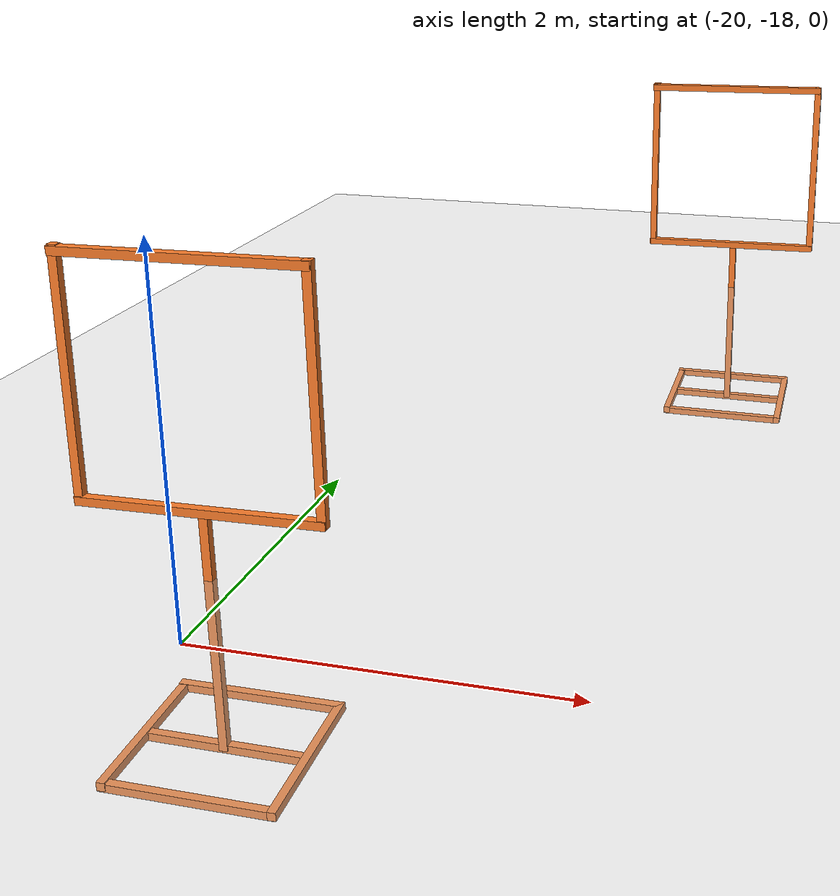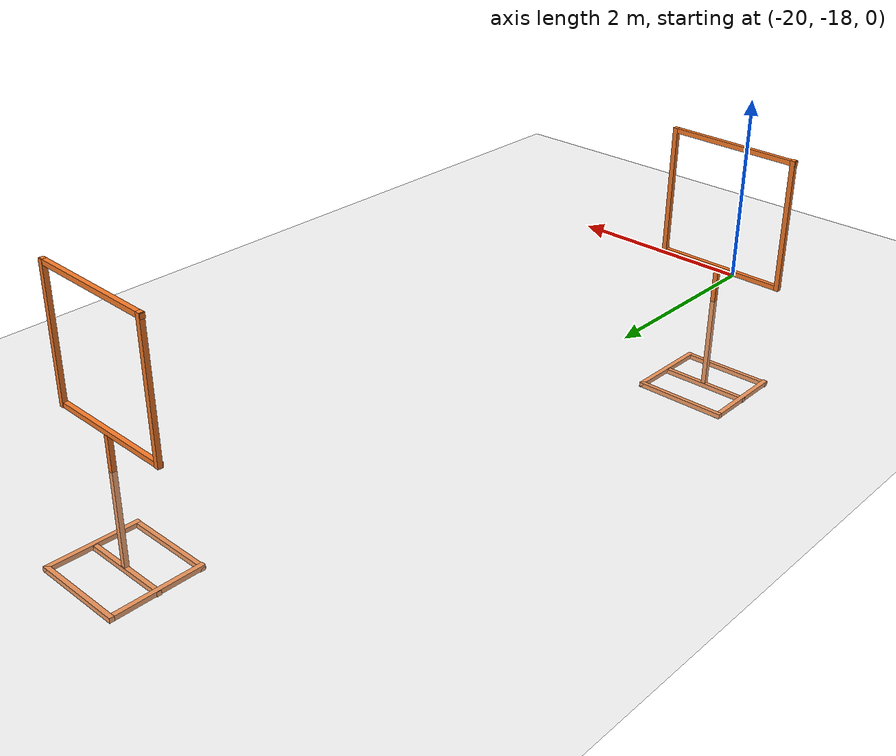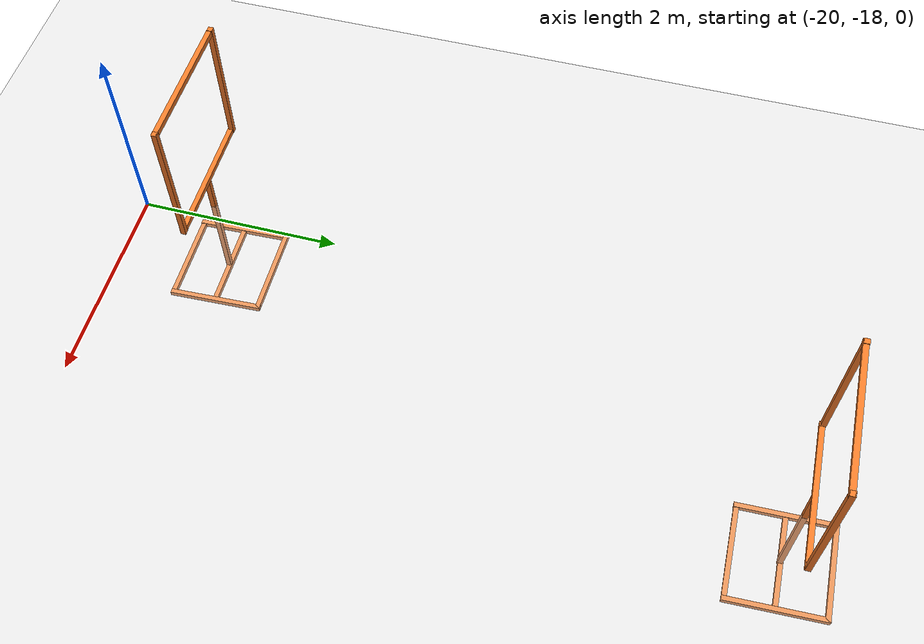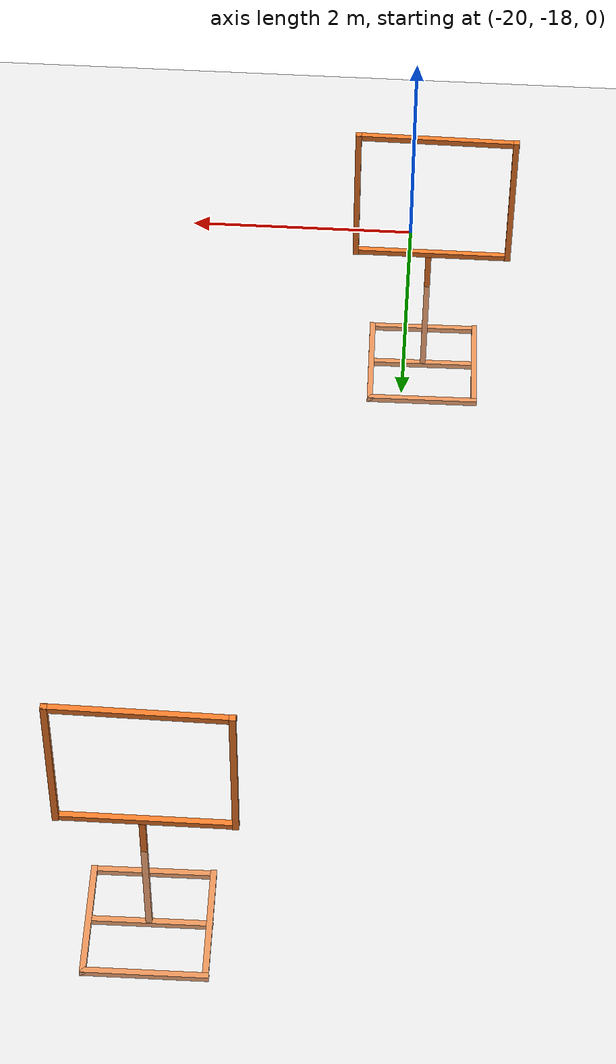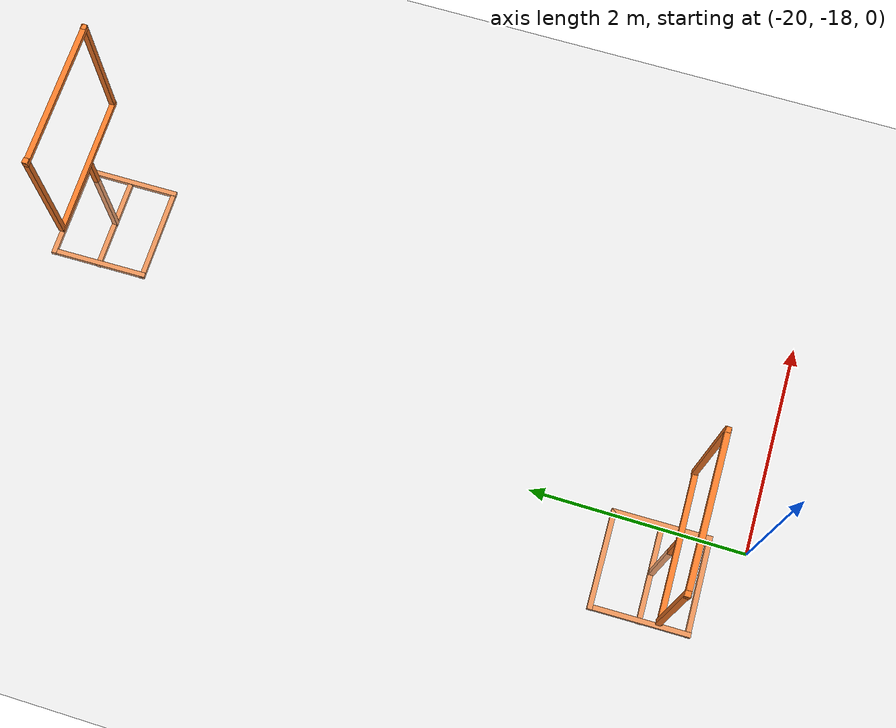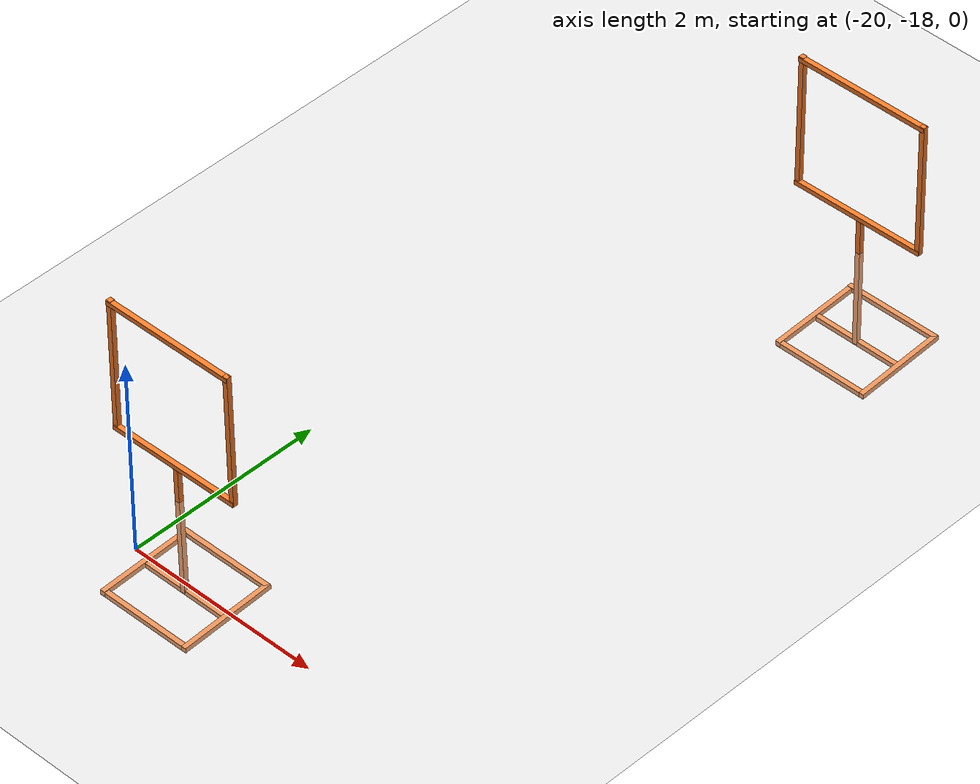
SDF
<sdf version="1.6">
 <world name="default">
  <model name="ground_plane">
   <static>1</static>
   <link name="link">
    <collision name="collision">
     <geometry><plane><normal>0 0 1</normal><size>100 100</size></plane></geometry>
     <surface><friction><ode><mu>100</mu><mu2>50</mu2></ode></friction></surface>
    </collision>
    <visual name="visual">
     <cast_shadows>0</cast_shadows>
     <geometry><plane><normal>0 0 1</normal><size>100 100</size></plane></geometry>
     <material>
      <script><uri>file://media/materials/scripts/gazebo.material</uri><name>Gazebo/Grey</name></script>
     </material>
    </visual>
    <velocity_decay><linear>0</linear><angular>0</angular></velocity_decay>
   </link>
  </model>
  <model name="closed_gate_clone_clone_0_clone_2">
   <link name="link">
    <inertial>
     <mass>1</mass>
     <inertia>
      <ixx>0.166667</ixx>
      <ixy>0</ixy>
      <ixz>0</ixz>
      <iyy>0.166667</iyy>
      <iyz>0</iyz>
      <izz>0.166667</izz>
     </inertia>
    </inertial>
    <pose>0.404756 -0.715724 1.41623 0 -0 0</pose>
    <visual name="visual">
     <geometry><box><size>0.05 0.05 1.4</size></box></geometry>
     <material>
      <script><name>Gazebo/Grey</name><uri>file://media/materials/scripts/gazebo.material</uri></script>
      <shader type="vertex"><normal_map>__default__</normal_map></shader>
      <ambient>0.976 0.484 0.164 1</ambient>
      <diffuse>0.976 0.484 0.164 1</diffuse>
      <specular>0.01 0.01 0.01 1</specular>
      <emissive>0 0 0 1</emissive>
     </material>
    </visual>
    <collision name="collision">
     <geometry><box><size>0.05 0.05 1.4</size></box></geometry>
     <surface>
      <friction>
       <ode><mu>1</mu><mu2>1</mu2><fdir1>0 0 0</fdir1><slip1>0</slip1><slip2>0</slip2></ode>
       <torsional>
        <coefficient>1</coefficient>
        <patch_radius>0</patch_radius>
        <surface_radius>0</surface_radius>
        <use_patch_radius>1</use_patch_radius>
        <ode><slip>0</slip></ode>
       </torsional>
      </friction>
      <bounce><restitution_coefficient>0</restitution_coefficient><threshold>1e+06</threshold></bounce>
      <contact>
       <collide_without_contact>0</collide_without_contact>
       <collide_without_contact_bitmask>1</collide_without_contact_bitmask>
       <collide_bitmask>1</collide_bitmask>
       <ode>
        <soft_cfm>0</soft_cfm>
        <soft_erp>0.2</soft_erp>
        <kp>1e+13</kp>
        <kd>1</kd>
        <max_vel>0.01</max_vel>
        <min_depth>0</min_depth>
       </ode>
       <bullet>
        <split_impulse>1</split_impulse>
        <split_impulse_penetration_threshold>-0.01</split_impulse_penetration_threshold>
        <soft_cfm>0</soft_cfm>
        <soft_erp>0.2</soft_erp>
        <kp>1e+13</kp>
        <kd>1</kd>
       </bullet>
      </contact>
     </surface>
    </collision>
   </link>
   <link name="link_clone_0_clone_0">
    <inertial>
     <mass>1</mass>
     <inertia>
      <ixx>0.166667</ixx>
      <ixy>0</ixy>
      <ixz>0</ixz>
      <iyy>0.166667</iyy>
      <iyz>0</iyz>
      <izz>0.166667</izz>
     </inertia>
    </inertial>
    <pose>1.11096 -0.693594 -0.667388 -1.57955 0.044957 -1.56415</pose>
    <visual name="visual">
     <geometry><box><size>0.05 0.05 1</size></box></geometry>
     <material>
      <script><name>Gazebo/Grey</name><uri>file://media/materials/scripts/gazebo.material</uri></script>
      <shader type="vertex"><normal_map>__default__</normal_map></shader>
      <ambient>0.976 0.484 0.164 1</ambient>
      <diffuse>0.976 0.484 0.164 1</diffuse>
      <specular>0.01 0.01 0.01 1</specular>
      <emissive>0 0 0 1</emissive>
     </material>
    </visual>
    <collision name="collision">
     <geometry><box><size>0.05 0.05 1</size></box></geometry>
     <surface>
      <friction>
       <ode><mu>1</mu><mu2>1</mu2><fdir1>0 0 0</fdir1><slip1>0</slip1><slip2>0</slip2></ode>
       <torsional>
        <coefficient>1</coefficient>
        <patch_radius>0</patch_radius>
        <surface_radius>0</surface_radius>
        <use_patch_radius>1</use_patch_radius>
        <ode><slip>0</slip></ode>
       </torsional>
      </friction>
      <bounce><restitution_coefficient>0</restitution_coefficient><threshold>1e+06</threshold></bounce>
      <contact>
       <collide_without_contact>0</collide_without_contact>
       <collide_without_contact_bitmask>1</collide_without_contact_bitmask>
       <collide_bitmask>1</collide_bitmask>
       <ode>
        <soft_cfm>0</soft_cfm>
        <soft_erp>0.2</soft_erp>
        <kp>1e+13</kp>
        <kd>1</kd>
        <max_vel>0.01</max_vel>
        <min_depth>0</min_depth>
       </ode>
       <bullet>
        <split_impulse>1</split_impulse>
        <split_impulse_penetration_threshold>-0.01</split_impulse_penetration_threshold>
        <soft_cfm>0</soft_cfm>
        <soft_erp>0.2</soft_erp>
        <kp>1e+13</kp>
        <kd>1</kd>
       </bullet>
      </contact>
     </surface>
    </collision>
   </link>
   <link name="link_clone_0_clone_0_clone">
    <inertial>
     <mass>1</mass>
     <inertia>
      <ixx>0.166667</ixx>
      <ixy>0</ixy>
      <ixz>0</ixz>
      <iyy>0.166667</iyy>
      <iyz>0</iyz>
      <izz>0.166667</izz>
     </inertia>
    </inertial>
    <pose>0.637485 -0.695511 -0.656732 -1.55146 -0.019345 0.017432</pose>
    <visual name="visual">
     <geometry><box><size>0.05 0.05 1</size></box></geometry>
     <material>
      <script><name>Gazebo/Grey</name><uri>file://media/materials/scripts/gazebo.material</uri></script>
      <shader type="vertex"><normal_map>__default__</normal_map></shader>
      <ambient>0.976 0.484 0.164 1</ambient>
      <diffuse>0.976 0.484 0.164 1</diffuse>
      <specular>0.01 0.01 0.01 1</specular>
      <emissive>0 0 0 1</emissive>
     </material>
    </visual>
    <collision name="collision">
     <geometry><box><size>0.05 0.05 1</size></box></geometry>
     <surface>
      <friction>
       <ode><mu>1</mu><mu2>1</mu2><fdir1>0 0 0</fdir1><slip1>0</slip1><slip2>0</slip2></ode>
       <torsional>
        <coefficient>1</coefficient>
        <patch_radius>0</patch_radius>
        <surface_radius>0</surface_radius>
        <use_patch_radius>1</use_patch_radius>
        <ode><slip>0</slip></ode>
       </torsional>
      </friction>
      <bounce><restitution_coefficient>0</restitution_coefficient><threshold>1e+06</threshold></bounce>
      <contact>
       <collide_without_contact>0</collide_without_contact>
       <collide_without_contact_bitmask>1</collide_without_contact_bitmask>
       <collide_bitmask>1</collide_bitmask>
       <ode>
        <soft_cfm>0</soft_cfm>
        <soft_erp>0.2</soft_erp>
        <kp>1e+13</kp>
        <kd>1</kd>
        <max_vel>0.01</max_vel>
        <min_depth>0</min_depth>
       </ode>
       <bullet>
        <split_impulse>1</split_impulse>
        <split_impulse_penetration_threshold>-0.01</split_impulse_penetration_threshold>
        <soft_cfm>0</soft_cfm>
        <soft_erp>0.2</soft_erp>
        <kp>1e+13</kp>
        <kd>1</kd>
       </bullet>
      </contact>
     </surface>
    </collision>
   </link>
   <link name="link_clone_0_clone_0_clone_0">
    <inertial>
     <mass>1</mass>
     <inertia>
      <ixx>0.166667</ixx>
      <ixy>0</ixy>
      <ixz>0</ixz>
      <iyy>0.166667</iyy>
      <iyz>0</iyz>
      <izz>0.166667</izz>
     </inertia>
    </inertial>
    <pose>1.12077 -1.16283 -0.677317 -1.57839 0.053451 -1.56287</pose>
    <visual name="visual">
     <geometry><box><size>0.05 0.05 1</size></box></geometry>
     <material>
      <script><name>Gazebo/Grey</name><uri>file://media/materials/scripts/gazebo.material</uri></script>
      <shader type="vertex"><normal_map>__default__</normal_map></shader>
      <ambient>0.976 0.484 0.164 1</ambient>
      <diffuse>0.976 0.484 0.164 1</diffuse>
      <specular>0.01 0.01 0.01 1</specular>
      <emissive>0 0 0 1</emissive>
     </material>
    </visual>
    <collision name="collision">
     <geometry><box><size>0.05 0.05 1</size></box></geometry>
     <surface>
      <friction>
       <ode><mu>1</mu><mu2>1</mu2><fdir1>0 0 0</fdir1><slip1>0</slip1><slip2>0</slip2></ode>
       <torsional>
        <coefficient>1</coefficient>
        <patch_radius>0</patch_radius>
        <surface_radius>0</surface_radius>
        <use_patch_radius>1</use_patch_radius>
        <ode><slip>0</slip></ode>
       </torsional>
      </friction>
      <bounce><restitution_coefficient>0</restitution_coefficient><threshold>1e+06</threshold></bounce>
      <contact>
       <collide_without_contact>0</collide_without_contact>
       <collide_without_contact_bitmask>1</collide_without_contact_bitmask>
       <collide_bitmask>1</collide_bitmask>
       <ode>
        <soft_cfm>0</soft_cfm>
        <soft_erp>0.2</soft_erp>
        <kp>1e+13</kp>
        <kd>1</kd>
        <max_vel>0.01</max_vel>
        <min_depth>0</min_depth>
       </ode>
       <bullet>
        <split_impulse>1</split_impulse>
        <split_impulse_penetration_threshold>-0.01</split_impulse_penetration_threshold>
        <soft_cfm>0</soft_cfm>
        <soft_erp>0.2</soft_erp>
        <kp>1e+13</kp>
        <kd>1</kd>
       </bullet>
      </contact>
     </surface>
    </collision>
   </link>
   <link name="link_clone_0_clone_0_clone_2">
    <inertial>
     <mass>1</mass>
     <inertia>
      <ixx>0.166667</ixx>
      <ixy>0</ixy>
      <ixz>0</ixz>
      <iyy>0.166667</iyy>
      <iyz>0</iyz>
      <izz>0.166667</izz>
     </inertia>
    </inertial>
    <pose>1.10088 -0.214462 -0.645898 -1.57451 0.053447 -1.56287</pose>
    <visual name="visual">
     <geometry><box><size>0.05 0.05 1</size></box></geometry>
     <material>
      <script><name>Gazebo/Grey</name><uri>file://media/materials/scripts/gazebo.material</uri></script>
      <shader type="vertex"><normal_map>__default__</normal_map></shader>
      <ambient>0.976 0.484 0.164 1</ambient>
      <diffuse>0.976 0.484 0.164 1</diffuse>
      <specular>0.01 0.01 0.01 1</specular>
      <emissive>0 0 0 1</emissive>
     </material>
    </visual>
    <collision name="collision">
     <geometry><box><size>0.05 0.05 1</size></box></geometry>
     <surface>
      <friction>
       <ode><mu>1</mu><mu2>1</mu2><fdir1>0 0 0</fdir1><slip1>0</slip1><slip2>0</slip2></ode>
       <torsional>
        <coefficient>1</coefficient>
        <patch_radius>0</patch_radius>
        <surface_radius>0</surface_radius>
        <use_patch_radius>1</use_patch_radius>
        <ode><slip>0</slip></ode>
       </torsional>
      </friction>
      <bounce><restitution_coefficient>0</restitution_coefficient><threshold>1e+06</threshold></bounce>
      <contact>
       <collide_without_contact>0</collide_without_contact>
       <collide_without_contact_bitmask>1</collide_without_contact_bitmask>
       <collide_bitmask>1</collide_bitmask>
       <ode>
        <soft_cfm>0</soft_cfm>
        <soft_erp>0.2</soft_erp>
        <kp>1e+13</kp>
        <kd>1</kd>
        <max_vel>0.01</max_vel>
        <min_depth>0</min_depth>
       </ode>
       <bullet>
        <split_impulse>1</split_impulse>
        <split_impulse_penetration_threshold>-0.01</split_impulse_penetration_threshold>
        <soft_cfm>0</soft_cfm>
        <soft_erp>0.2</soft_erp>
        <kp>1e+13</kp>
        <kd>1</kd>
       </bullet>
      </contact>
     </surface>
    </collision>
   </link>
   <link name="link_clone_0_clone_0_clone_clone">
    <inertial>
     <mass>1</mass>
     <inertia>
      <ixx>0.166667</ixx>
      <ixy>0</ixy>
      <ixz>0</ixz>
      <iyy>0.166667</iyy>
      <iyz>0</iyz>
      <izz>0.166667</izz>
     </inertia>
    </inertial>
    <pose>1.59453 -0.684923 -0.663241 -1.53838 -0.023075 0.018345</pose>
    <visual name="visual">
     <geometry><box><size>0.05 0.05 1</size></box></geometry>
     <material>
      <script><name>Gazebo/Grey</name><uri>file://media/materials/scripts/gazebo.material</uri></script>
      <shader type="vertex"><normal_map>__default__</normal_map></shader>
      <ambient>0.976 0.484 0.164 1</ambient>
      <diffuse>0.976 0.484 0.164 1</diffuse>
      <specular>0.01 0.01 0.01 1</specular>
      <emissive>0 0 0 1</emissive>
     </material>
    </visual>
    <collision name="collision">
     <geometry><box><size>0.05 0.05 1</size></box></geometry>
     <surface>
      <friction>
       <ode><mu>1</mu><mu2>1</mu2><fdir1>0 0 0</fdir1><slip1>0</slip1><slip2>0</slip2></ode>
       <torsional>
        <coefficient>1</coefficient>
        <patch_radius>0</patch_radius>
        <surface_radius>0</surface_radius>
        <use_patch_radius>1</use_patch_radius>
        <ode><slip>0</slip></ode>
       </torsional>
      </friction>
      <bounce><restitution_coefficient>0</restitution_coefficient><threshold>1e+06</threshold></bounce>
      <contact>
       <collide_without_contact>0</collide_without_contact>
       <collide_without_contact_bitmask>1</collide_without_contact_bitmask>
       <collide_bitmask>1</collide_bitmask>
       <ode>
        <soft_cfm>0</soft_cfm>
        <soft_erp>0.2</soft_erp>
        <kp>1e+13</kp>
        <kd>1</kd>
        <max_vel>0.01</max_vel>
        <min_depth>0</min_depth>
       </ode>
       <bullet>
        <split_impulse>1</split_impulse>
        <split_impulse_penetration_threshold>-0.01</split_impulse_penetration_threshold>
        <soft_cfm>0</soft_cfm>
        <soft_erp>0.2</soft_erp>
        <kp>1e+13</kp>
        <kd>1</kd>
       </bullet>
      </contact>
     </surface>
    </collision>
   </link>
   <link name="link_clone_0_clone_1">
    <inertial>
     <mass>1</mass>
     <inertia>
      <ixx>0.166667</ixx>
      <ixy>0</ixy>
      <ixz>0</ixz>
      <iyy>0.166667</iyy>
      <iyz>0</iyz>
      <izz>0.166667</izz>
     </inertia>
    </inertial>
    <pose>1.08198 -0.717602 0.744079 -1.56201 0.04483 -1.56244</pose>
    <visual name="visual">
     <geometry><box><size>0.05 0.05 1.4</size></box></geometry>
     <material>
      <script><name>Gazebo/Grey</name><uri>file://media/materials/scripts/gazebo.material</uri></script>
      <shader type="vertex"><normal_map>__default__</normal_map></shader>
      <ambient>0.976 0.484 0.164 1</ambient>
      <diffuse>0.976 0.484 0.164 1</diffuse>
      <specular>0.01 0.01 0.01 1</specular>
      <emissive>0 0 0 1</emissive>
     </material>
    </visual>
    <collision name="collision">
     <geometry><box><size>0.05 0.05 1.4</size></box></geometry>
     <surface>
      <friction>
       <ode><mu>1</mu><mu2>1</mu2><fdir1>0 0 0</fdir1><slip1>0</slip1><slip2>0</slip2></ode>
       <torsional>
        <coefficient>1</coefficient>
        <patch_radius>0</patch_radius>
        <surface_radius>0</surface_radius>
        <use_patch_radius>1</use_patch_radius>
        <ode><slip>0</slip></ode>
       </torsional>
      </friction>
      <bounce><restitution_coefficient>0</restitution_coefficient><threshold>1e+06</threshold></bounce>
      <contact>
       <collide_without_contact>0</collide_without_contact>
       <collide_without_contact_bitmask>1</collide_without_contact_bitmask>
       <collide_bitmask>1</collide_bitmask>
       <ode>
        <soft_cfm>0</soft_cfm>
        <soft_erp>0.2</soft_erp>
        <kp>1e+13</kp>
        <kd>1</kd>
        <max_vel>0.01</max_vel>
        <min_depth>0</min_depth>
       </ode>
       <bullet>
        <split_impulse>1</split_impulse>
        <split_impulse_penetration_threshold>-0.01</split_impulse_penetration_threshold>
        <soft_cfm>0</soft_cfm>
        <soft_erp>0.2</soft_erp>
        <kp>1e+13</kp>
        <kd>1</kd>
       </bullet>
      </contact>
     </surface>
    </collision>
   </link>
   <link name="link_clone_0_clone_1_clone">
    <inertial>
     <mass>1</mass>
     <inertia>
      <ixx>0.166667</ixx>
      <ixy>0</ixy>
      <ixz>0</ixz>
      <iyy>0.166667</iyy>
      <iyz>0</iyz>
      <izz>0.166667</izz>
     </inertia>
    </inertial>
    <pose>1.07529 -0.719849 2.09328 -1.55888 0.053444 -1.57124</pose>
    <visual name="visual">
     <geometry><box><size>0.05 0.05 1.4</size></box></geometry>
     <material>
      <script><name>Gazebo/Grey</name><uri>file://media/materials/scripts/gazebo.material</uri></script>
      <shader type="vertex"><normal_map>__default__</normal_map></shader>
      <ambient>0.976 0.484 0.164 1</ambient>
      <diffuse>0.976 0.484 0.164 1</diffuse>
      <specular>0.01 0.01 0.01 1</specular>
      <emissive>0 0 0 1</emissive>
     </material>
    </visual>
    <collision name="collision">
     <geometry><box><size>0.05 0.05 1.4</size></box></geometry>
     <surface>
      <friction>
       <ode><mu>1</mu><mu2>1</mu2><fdir1>0 0 0</fdir1><slip1>0</slip1><slip2>0</slip2></ode>
       <torsional>
        <coefficient>1</coefficient>
        <patch_radius>0</patch_radius>
        <surface_radius>0</surface_radius>
        <use_patch_radius>1</use_patch_radius>
        <ode><slip>0</slip></ode>
       </torsional>
      </friction>
      <bounce><restitution_coefficient>0</restitution_coefficient><threshold>1e+06</threshold></bounce>
      <contact>
       <collide_without_contact>0</collide_without_contact>
       <collide_without_contact_bitmask>1</collide_without_contact_bitmask>
       <collide_bitmask>1</collide_bitmask>
       <ode>
        <soft_cfm>0</soft_cfm>
        <soft_erp>0.2</soft_erp>
        <kp>1e+13</kp>
        <kd>1</kd>
        <max_vel>0.01</max_vel>
        <min_depth>0</min_depth>
       </ode>
       <bullet>
        <split_impulse>1</split_impulse>
        <split_impulse_penetration_threshold>-0.01</split_impulse_penetration_threshold>
        <soft_cfm>0</soft_cfm>
        <soft_erp>0.2</soft_erp>
        <kp>1e+13</kp>
        <kd>1</kd>
       </bullet>
      </contact>
     </surface>
    </collision>
   </link>
   <link name="link_clone_1">
    <inertial>
     <mass>1</mass>
     <inertia>
      <ixx>0.166667</ixx>
      <ixy>0</ixy>
      <ixz>0</ixz>
      <iyy>0.166667</iyy>
      <iyz>0</iyz>
      <izz>0.166667</izz>
     </inertia>
    </inertial>
    <pose>1.11167 -0.706269 0.02254 0.008527 -0.003582 0.001077</pose>
    <visual name="visual">
     <geometry><box><size>0.05 0.05 1.4</size></box></geometry>
     <material>
      <script><name>Gazebo/Grey</name><uri>file://media/materials/scripts/gazebo.material</uri></script>
      <shader type="vertex"><normal_map>__default__</normal_map></shader>
      <ambient>0.976 0.484 0.164 1</ambient>
      <diffuse>0.976 0.484 0.164 1</diffuse>
      <specular>0.01 0.01 0.01 1</specular>
      <emissive>0 0 0 1</emissive>
     </material>
    </visual>
    <collision name="collision">
     <geometry><box><size>0.05 0.05 1.4</size></box></geometry>
     <surface>
      <friction>
       <ode><mu>1</mu><mu2>1</mu2><fdir1>0 0 0</fdir1><slip1>0</slip1><slip2>0</slip2></ode>
       <torsional>
        <coefficient>1</coefficient>
        <patch_radius>0</patch_radius>
        <surface_radius>0</surface_radius>
        <use_patch_radius>1</use_patch_radius>
        <ode><slip>0</slip></ode>
       </torsional>
      </friction>
      <bounce><restitution_coefficient>0</restitution_coefficient><threshold>1e+06</threshold></bounce>
      <contact>
       <collide_without_contact>0</collide_without_contact>
       <collide_without_contact_bitmask>1</collide_without_contact_bitmask>
       <collide_bitmask>1</collide_bitmask>
       <ode>
        <soft_cfm>0</soft_cfm>
        <soft_erp>0.2</soft_erp>
        <kp>1e+13</kp>
        <kd>1</kd>
        <max_vel>0.01</max_vel>
        <min_depth>0</min_depth>
       </ode>
       <bullet>
        <split_impulse>1</split_impulse>
        <split_impulse_penetration_threshold>-0.01</split_impulse_penetration_threshold>
        <soft_cfm>0</soft_cfm>
        <soft_erp>0.2</soft_erp>
        <kp>1e+13</kp>
        <kd>1</kd>
       </bullet>
      </contact>
     </surface>
    </collision>
   </link>
   <link name="link_clone_7">
    <inertial>
     <mass>1</mass>
     <inertia>
      <ixx>0.166667</ixx>
      <ixy>0</ixy>
      <ixz>0</ixz>
      <iyy>0.166667</iyy>
      <iyz>0</iyz>
      <izz>0.166667</izz>
     </inertia>
    </inertial>
    <pose>1.75876 -0.711707 1.42733 0.008527 -0.003582 0.001077</pose>
    <visual name="visual">
     <geometry><box><size>0.05 0.05 1.4</size></box></geometry>
     <material>
      <script><name>Gazebo/Grey</name><uri>file://media/materials/scripts/gazebo.material</uri></script>
      <shader type="vertex"><normal_map>__default__</normal_map></shader>
      <ambient>0.976 0.484 0.164 1</ambient>
      <diffuse>0.976 0.484 0.164 1</diffuse>
      <specular>0.01 0.01 0.01 1</specular>
      <emissive>0 0 0 1</emissive>
     </material>
    </visual>
    <collision name="collision">
     <geometry><box><size>0.05 0.05 1.4</size></box></geometry>
     <surface>
      <friction>
       <ode><mu>1</mu><mu2>1</mu2><fdir1>0 0 0</fdir1><slip1>0</slip1><slip2>0</slip2></ode>
       <torsional>
        <coefficient>1</coefficient>
        <patch_radius>0</patch_radius>
        <surface_radius>0</surface_radius>
        <use_patch_radius>1</use_patch_radius>
        <ode><slip>0</slip></ode>
       </torsional>
      </friction>
      <bounce><restitution_coefficient>0</restitution_coefficient><threshold>1e+06</threshold></bounce>
      <contact>
       <collide_without_contact>0</collide_without_contact>
       <collide_without_contact_bitmask>1</collide_without_contact_bitmask>
       <collide_bitmask>1</collide_bitmask>
       <ode>
        <soft_cfm>0</soft_cfm>
        <soft_erp>0.2</soft_erp>
        <kp>1e+13</kp>
        <kd>1</kd>
        <max_vel>0.01</max_vel>
        <min_depth>0</min_depth>
       </ode>
       <bullet>
        <split_impulse>1</split_impulse>
        <split_impulse_penetration_threshold>-0.01</split_impulse_penetration_threshold>
        <soft_cfm>0</soft_cfm>
        <soft_erp>0.2</soft_erp>
        <kp>1e+13</kp>
        <kd>1</kd>
       </bullet>
      </contact>
     </surface>
    </collision>
   </link>
   <static>1</static>
   <pose>-21.285 -16.6369 -0.36646 0 -0 0</pose>
  </model>
  <model name="closed_gate_clone_clone_0_clone_3">
   <link name="link">
    <inertial>
     <mass>1</mass>
     <inertia>
      <ixx>0.166667</ixx>
      <ixy>0</ixy>
      <ixz>0</ixz>
      <iyy>0.166667</iyy>
      <iyz>0</iyz>
      <izz>0.166667</izz>
     </inertia>
    </inertial>
    <pose>0.404756 -0.715724 1.41623 0 -0 0</pose>
    <visual name="visual">
     <geometry><box><size>0.05 0.05 1.4</size></box></geometry>
     <material>
      <script><name>Gazebo/Grey</name><uri>file://media/materials/scripts/gazebo.material</uri></script>
      <shader type="vertex"><normal_map>__default__</normal_map></shader>
      <ambient>0.976 0.484 0.164 1</ambient>
      <diffuse>0.976 0.484 0.164 1</diffuse>
      <specular>0.01 0.01 0.01 1</specular>
      <emissive>0 0 0 1</emissive>
     </material>
    </visual>
    <collision name="collision">
     <geometry><box><size>0.05 0.05 1.4</size></box></geometry>
     <surface>
      <friction>
       <ode><mu>1</mu><mu2>1</mu2><fdir1>0 0 0</fdir1><slip1>0</slip1><slip2>0</slip2></ode>
       <torsional>
        <coefficient>1</coefficient>
        <patch_radius>0</patch_radius>
        <surface_radius>0</surface_radius>
        <use_patch_radius>1</use_patch_radius>
        <ode><slip>0</slip></ode>
       </torsional>
      </friction>
      <bounce><restitution_coefficient>0</restitution_coefficient><threshold>1e+06</threshold></bounce>
      <contact>
       <collide_without_contact>0</collide_without_contact>
       <collide_without_contact_bitmask>1</collide_without_contact_bitmask>
       <collide_bitmask>1</collide_bitmask>
       <ode>
        <soft_cfm>0</soft_cfm>
        <soft_erp>0.2</soft_erp>
        <kp>1e+13</kp>
        <kd>1</kd>
        <max_vel>0.01</max_vel>
        <min_depth>0</min_depth>
       </ode>
       <bullet>
        <split_impulse>1</split_impulse>
        <split_impulse_penetration_threshold>-0.01</split_impulse_penetration_threshold>
        <soft_cfm>0</soft_cfm>
        <soft_erp>0.2</soft_erp>
        <kp>1e+13</kp>
        <kd>1</kd>
       </bullet>
      </contact>
     </surface>
    </collision>
   </link>
   <link name="link_clone_0_clone_0">
    <inertial>
     <mass>1</mass>
     <inertia>
      <ixx>0.166667</ixx>
      <ixy>0</ixy>
      <ixz>0</ixz>
      <iyy>0.166667</iyy>
      <iyz>0</iyz>
      <izz>0.166667</izz>
     </inertia>
    </inertial>
    <pose>1.11096 -0.693594 -0.667388 -1.57955 0.044957 -1.56415</pose>
    <visual name="visual">
     <geometry><box><size>0.05 0.05 1</size></box></geometry>
     <material>
      <script><name>Gazebo/Grey</name><uri>file://media/materials/scripts/gazebo.material</uri></script>
      <shader type="vertex"><normal_map>__default__</normal_map></shader>
      <ambient>0.976 0.484 0.164 1</ambient>
      <diffuse>0.976 0.484 0.164 1</diffuse>
      <specular>0.01 0.01 0.01 1</specular>
      <emissive>0 0 0 1</emissive>
     </material>
    </visual>
    <collision name="collision">
     <geometry><box><size>0.05 0.05 1</size></box></geometry>
     <surface>
      <friction>
       <ode><mu>1</mu><mu2>1</mu2><fdir1>0 0 0</fdir1><slip1>0</slip1><slip2>0</slip2></ode>
       <torsional>
        <coefficient>1</coefficient>
        <patch_radius>0</patch_radius>
        <surface_radius>0</surface_radius>
        <use_patch_radius>1</use_patch_radius>
        <ode><slip>0</slip></ode>
       </torsional>
      </friction>
      <bounce><restitution_coefficient>0</restitution_coefficient><threshold>1e+06</threshold></bounce>
      <contact>
       <collide_without_contact>0</collide_without_contact>
       <collide_without_contact_bitmask>1</collide_without_contact_bitmask>
       <collide_bitmask>1</collide_bitmask>
       <ode>
        <soft_cfm>0</soft_cfm>
        <soft_erp>0.2</soft_erp>
        <kp>1e+13</kp>
        <kd>1</kd>
        <max_vel>0.01</max_vel>
        <min_depth>0</min_depth>
       </ode>
       <bullet>
        <split_impulse>1</split_impulse>
        <split_impulse_penetration_threshold>-0.01</split_impulse_penetration_threshold>
        <soft_cfm>0</soft_cfm>
        <soft_erp>0.2</soft_erp>
        <kp>1e+13</kp>
        <kd>1</kd>
       </bullet>
      </contact>
     </surface>
    </collision>
   </link>
   <link name="link_clone_0_clone_0_clone">
    <inertial>
     <mass>1</mass>
     <inertia>
      <ixx>0.166667</ixx>
      <ixy>0</ixy>
      <ixz>0</ixz>
      <iyy>0.166667</iyy>
      <iyz>0</iyz>
      <izz>0.166667</izz>
     </inertia>
    </inertial>
    <pose>0.637485 -0.695511 -0.656732 -1.55146 -0.019345 0.017432</pose>
    <visual name="visual">
     <geometry><box><size>0.05 0.05 1</size></box></geometry>
     <material>
      <script><name>Gazebo/Grey</name><uri>file://media/materials/scripts/gazebo.material</uri></script>
      <shader type="vertex"><normal_map>__default__</normal_map></shader>
      <ambient>0.976 0.484 0.164 1</ambient>
      <diffuse>0.976 0.484 0.164 1</diffuse>
      <specular>0.01 0.01 0.01 1</specular>
      <emissive>0 0 0 1</emissive>
     </material>
    </visual>
    <collision name="collision">
     <geometry><box><size>0.05 0.05 1</size></box></geometry>
     <surface>
      <friction>
       <ode><mu>1</mu><mu2>1</mu2><fdir1>0 0 0</fdir1><slip1>0</slip1><slip2>0</slip2></ode>
       <torsional>
        <coefficient>1</coefficient>
        <patch_radius>0</patch_radius>
        <surface_radius>0</surface_radius>
        <use_patch_radius>1</use_patch_radius>
        <ode><slip>0</slip></ode>
       </torsional>
      </friction>
      <bounce><restitution_coefficient>0</restitution_coefficient><threshold>1e+06</threshold></bounce>
      <contact>
       <collide_without_contact>0</collide_without_contact>
       <collide_without_contact_bitmask>1</collide_without_contact_bitmask>
       <collide_bitmask>1</collide_bitmask>
       <ode>
        <soft_cfm>0</soft_cfm>
        <soft_erp>0.2</soft_erp>
        <kp>1e+13</kp>
        <kd>1</kd>
        <max_vel>0.01</max_vel>
        <min_depth>0</min_depth>
       </ode>
       <bullet>
        <split_impulse>1</split_impulse>
        <split_impulse_penetration_threshold>-0.01</split_impulse_penetration_threshold>
        <soft_cfm>0</soft_cfm>
        <soft_erp>0.2</soft_erp>
        <kp>1e+13</kp>
        <kd>1</kd>
       </bullet>
      </contact>
     </surface>
    </collision>
   </link>
   <link name="link_clone_0_clone_0_clone_0">
    <inertial>
     <mass>1</mass>
     <inertia>
      <ixx>0.166667</ixx>
      <ixy>0</ixy>
      <ixz>0</ixz>
      <iyy>0.166667</iyy>
      <iyz>0</iyz>
      <izz>0.166667</izz>
     </inertia>
    </inertial>
    <pose>1.12077 -1.16283 -0.677317 -1.57839 0.053451 -1.56287</pose>
    <visual name="visual">
     <geometry><box><size>0.05 0.05 1</size></box></geometry>
     <material>
      <script><name>Gazebo/Grey</name><uri>file://media/materials/scripts/gazebo.material</uri></script>
      <shader type="vertex"><normal_map>__default__</normal_map></shader>
      <ambient>0.976 0.484 0.164 1</ambient>
      <diffuse>0.976 0.484 0.164 1</diffuse>
      <specular>0.01 0.01 0.01 1</specular>
      <emissive>0 0 0 1</emissive>
     </material>
    </visual>
    <collision name="collision">
     <geometry><box><size>0.05 0.05 1</size></box></geometry>
     <surface>
      <friction>
       <ode><mu>1</mu><mu2>1</mu2><fdir1>0 0 0</fdir1><slip1>0</slip1><slip2>0</slip2></ode>
       <torsional>
        <coefficient>1</coefficient>
        <patch_radius>0</patch_radius>
        <surface_radius>0</surface_radius>
        <use_patch_radius>1</use_patch_radius>
        <ode><slip>0</slip></ode>
       </torsional>
      </friction>
      <bounce><restitution_coefficient>0</restitution_coefficient><threshold>1e+06</threshold></bounce>
      <contact>
       <collide_without_contact>0</collide_without_contact>
       <collide_without_contact_bitmask>1</collide_without_contact_bitmask>
       <collide_bitmask>1</collide_bitmask>
       <ode>
        <soft_cfm>0</soft_cfm>
        <soft_erp>0.2</soft_erp>
        <kp>1e+13</kp>
        <kd>1</kd>
        <max_vel>0.01</max_vel>
        <min_depth>0</min_depth>
       </ode>
       <bullet>
        <split_impulse>1</split_impulse>
        <split_impulse_penetration_threshold>-0.01</split_impulse_penetration_threshold>
        <soft_cfm>0</soft_cfm>
        <soft_erp>0.2</soft_erp>
        <kp>1e+13</kp>
        <kd>1</kd>
       </bullet>
      </contact>
     </surface>
    </collision>
   </link>
   <link name="link_clone_0_clone_0_clone_2">
    <inertial>
     <mass>1</mass>
     <inertia>
      <ixx>0.166667</ixx>
      <ixy>0</ixy>
      <ixz>0</ixz>
      <iyy>0.166667</iyy>
      <iyz>0</iyz>
      <izz>0.166667</izz>
     </inertia>
    </inertial>
    <pose>1.10088 -0.214462 -0.645898 -1.57451 0.053447 -1.56287</pose>
    <visual name="visual">
     <geometry><box><size>0.05 0.05 1</size></box></geometry>
     <material>
      <script><name>Gazebo/Grey</name><uri>file://media/materials/scripts/gazebo.material</uri></script>
      <shader type="vertex"><normal_map>__default__</normal_map></shader>
      <ambient>0.976 0.484 0.164 1</ambient>
      <diffuse>0.976 0.484 0.164 1</diffuse>
      <specular>0.01 0.01 0.01 1</specular>
      <emissive>0 0 0 1</emissive>
     </material>
    </visual>
    <collision name="collision">
     <geometry><box><size>0.05 0.05 1</size></box></geometry>
     <surface>
      <friction>
       <ode><mu>1</mu><mu2>1</mu2><fdir1>0 0 0</fdir1><slip1>0</slip1><slip2>0</slip2></ode>
       <torsional>
        <coefficient>1</coefficient>
        <patch_radius>0</patch_radius>
        <surface_radius>0</surface_radius>
        <use_patch_radius>1</use_patch_radius>
        <ode><slip>0</slip></ode>
       </torsional>
      </friction>
      <bounce><restitution_coefficient>0</restitution_coefficient><threshold>1e+06</threshold></bounce>
      <contact>
       <collide_without_contact>0</collide_without_contact>
       <collide_without_contact_bitmask>1</collide_without_contact_bitmask>
       <collide_bitmask>1</collide_bitmask>
       <ode>
        <soft_cfm>0</soft_cfm>
        <soft_erp>0.2</soft_erp>
        <kp>1e+13</kp>
        <kd>1</kd>
        <max_vel>0.01</max_vel>
        <min_depth>0</min_depth>
       </ode>
       <bullet>
        <split_impulse>1</split_impulse>
        <split_impulse_penetration_threshold>-0.01</split_impulse_penetration_threshold>
        <soft_cfm>0</soft_cfm>
        <soft_erp>0.2</soft_erp>
        <kp>1e+13</kp>
        <kd>1</kd>
       </bullet>
      </contact>
     </surface>
    </collision>
   </link>
   <link name="link_clone_0_clone_0_clone_clone">
    <inertial>
     <mass>1</mass>
     <inertia>
      <ixx>0.166667</ixx>
      <ixy>0</ixy>
      <ixz>0</ixz>
      <iyy>0.166667</iyy>
      <iyz>0</iyz>
      <izz>0.166667</izz>
     </inertia>
    </inertial>
    <pose>1.59453 -0.684923 -0.663241 -1.53838 -0.023075 0.018345</pose>
    <visual name="visual">
     <geometry><box><size>0.05 0.05 1</size></box></geometry>
     <material>
      <script><name>Gazebo/Grey</name><uri>file://media/materials/scripts/gazebo.material</uri></script>
      <shader type="vertex"><normal_map>__default__</normal_map></shader>
      <ambient>0.976 0.484 0.164 1</ambient>
      <diffuse>0.976 0.484 0.164 1</diffuse>
      <specular>0.01 0.01 0.01 1</specular>
      <emissive>0 0 0 1</emissive>
     </material>
    </visual>
    <collision name="collision">
     <geometry><box><size>0.05 0.05 1</size></box></geometry>
     <surface>
      <friction>
       <ode><mu>1</mu><mu2>1</mu2><fdir1>0 0 0</fdir1><slip1>0</slip1><slip2>0</slip2></ode>
       <torsional>
        <coefficient>1</coefficient>
        <patch_radius>0</patch_radius>
        <surface_radius>0</surface_radius>
        <use_patch_radius>1</use_patch_radius>
        <ode><slip>0</slip></ode>
       </torsional>
      </friction>
      <bounce><restitution_coefficient>0</restitution_coefficient><threshold>1e+06</threshold></bounce>
      <contact>
       <collide_without_contact>0</collide_without_contact>
       <collide_without_contact_bitmask>1</collide_without_contact_bitmask>
       <collide_bitmask>1</collide_bitmask>
       <ode>
        <soft_cfm>0</soft_cfm>
        <soft_erp>0.2</soft_erp>
        <kp>1e+13</kp>
        <kd>1</kd>
        <max_vel>0.01</max_vel>
        <min_depth>0</min_depth>
       </ode>
       <bullet>
        <split_impulse>1</split_impulse>
        <split_impulse_penetration_threshold>-0.01</split_impulse_penetration_threshold>
        <soft_cfm>0</soft_cfm>
        <soft_erp>0.2</soft_erp>
        <kp>1e+13</kp>
        <kd>1</kd>
       </bullet>
      </contact>
     </surface>
    </collision>
   </link>
   <link name="link_clone_0_clone_1">
    <inertial>
     <mass>1</mass>
     <inertia>
      <ixx>0.166667</ixx>
      <ixy>0</ixy>
      <ixz>0</ixz>
      <iyy>0.166667</iyy>
      <iyz>0</iyz>
      <izz>0.166667</izz>
     </inertia>
    </inertial>
    <pose>1.08198 -0.717602 0.744079 -1.56201 0.04483 -1.56244</pose>
    <visual name="visual">
     <geometry><box><size>0.05 0.05 1.4</size></box></geometry>
     <material>
      <script><name>Gazebo/Grey</name><uri>file://media/materials/scripts/gazebo.material</uri></script>
      <shader type="vertex"><normal_map>__default__</normal_map></shader>
      <ambient>0.976 0.484 0.164 1</ambient>
      <diffuse>0.976 0.484 0.164 1</diffuse>
      <specular>0.01 0.01 0.01 1</specular>
      <emissive>0 0 0 1</emissive>
     </material>
    </visual>
    <collision name="collision">
     <geometry><box><size>0.05 0.05 1.4</size></box></geometry>
     <surface>
      <friction>
       <ode><mu>1</mu><mu2>1</mu2><fdir1>0 0 0</fdir1><slip1>0</slip1><slip2>0</slip2></ode>
       <torsional>
        <coefficient>1</coefficient>
        <patch_radius>0</patch_radius>
        <surface_radius>0</surface_radius>
        <use_patch_radius>1</use_patch_radius>
        <ode><slip>0</slip></ode>
       </torsional>
      </friction>
      <bounce><restitution_coefficient>0</restitution_coefficient><threshold>1e+06</threshold></bounce>
      <contact>
       <collide_without_contact>0</collide_without_contact>
       <collide_without_contact_bitmask>1</collide_without_contact_bitmask>
       <collide_bitmask>1</collide_bitmask>
       <ode>
        <soft_cfm>0</soft_cfm>
        <soft_erp>0.2</soft_erp>
        <kp>1e+13</kp>
        <kd>1</kd>
        <max_vel>0.01</max_vel>
        <min_depth>0</min_depth>
       </ode>
       <bullet>
        <split_impulse>1</split_impulse>
        <split_impulse_penetration_threshold>-0.01</split_impulse_penetration_threshold>
        <soft_cfm>0</soft_cfm>
        <soft_erp>0.2</soft_erp>
        <kp>1e+13</kp>
        <kd>1</kd>
       </bullet>
      </contact>
     </surface>
    </collision>
   </link>
   <link name="link_clone_0_clone_1_clone">
    <inertial>
     <mass>1</mass>
     <inertia>
      <ixx>0.166667</ixx>
      <ixy>0</ixy>
      <ixz>0</ixz>
      <iyy>0.166667</iyy>
      <iyz>0</iyz>
      <izz>0.166667</izz>
     </inertia>
    </inertial>
    <pose>1.07529 -0.719849 2.09328 -1.55888 0.053444 -1.57124</pose>
    <visual name="visual">
     <geometry><box><size>0.05 0.05 1.4</size></box></geometry>
     <material>
      <script><name>Gazebo/Grey</name><uri>file://media/materials/scripts/gazebo.material</uri></script>
      <shader type="vertex"><normal_map>__default__</normal_map></shader>
      <ambient>0.976 0.484 0.164 1</ambient>
      <diffuse>0.976 0.484 0.164 1</diffuse>
      <specular>0.01 0.01 0.01 1</specular>
      <emissive>0 0 0 1</emissive>
     </material>
    </visual>
    <collision name="collision">
     <geometry><box><size>0.05 0.05 1.4</size></box></geometry>
     <surface>
      <friction>
       <ode><mu>1</mu><mu2>1</mu2><fdir1>0 0 0</fdir1><slip1>0</slip1><slip2>0</slip2></ode>
       <torsional>
        <coefficient>1</coefficient>
        <patch_radius>0</patch_radius>
        <surface_radius>0</surface_radius>
        <use_patch_radius>1</use_patch_radius>
        <ode><slip>0</slip></ode>
       </torsional>
      </friction>
      <bounce><restitution_coefficient>0</restitution_coefficient><threshold>1e+06</threshold></bounce>
      <contact>
       <collide_without_contact>0</collide_without_contact>
       <collide_without_contact_bitmask>1</collide_without_contact_bitmask>
       <collide_bitmask>1</collide_bitmask>
       <ode>
        <soft_cfm>0</soft_cfm>
        <soft_erp>0.2</soft_erp>
        <kp>1e+13</kp>
        <kd>1</kd>
        <max_vel>0.01</max_vel>
        <min_depth>0</min_depth>
       </ode>
       <bullet>
        <split_impulse>1</split_impulse>
        <split_impulse_penetration_threshold>-0.01</split_impulse_penetration_threshold>
        <soft_cfm>0</soft_cfm>
        <soft_erp>0.2</soft_erp>
        <kp>1e+13</kp>
        <kd>1</kd>
       </bullet>
      </contact>
     </surface>
    </collision>
   </link>
   <link name="link_clone_1">
    <inertial>
     <mass>1</mass>
     <inertia>
      <ixx>0.166667</ixx>
      <ixy>0</ixy>
      <ixz>0</ixz>
      <iyy>0.166667</iyy>
      <iyz>0</iyz>
      <izz>0.166667</izz>
     </inertia>
    </inertial>
    <pose>1.11167 -0.706269 0.02254 0.008527 -0.003582 0.001077</pose>
    <visual name="visual">
     <geometry><box><size>0.05 0.05 1.4</size></box></geometry>
     <material>
      <script><name>Gazebo/Grey</name><uri>file://media/materials/scripts/gazebo.material</uri></script>
      <shader type="vertex"><normal_map>__default__</normal_map></shader>
      <ambient>0.976 0.484 0.164 1</ambient>
      <diffuse>0.976 0.484 0.164 1</diffuse>
      <specular>0.01 0.01 0.01 1</specular>
      <emissive>0 0 0 1</emissive>
     </material>
    </visual>
    <collision name="collision">
     <geometry><box><size>0.05 0.05 1.4</size></box></geometry>
     <surface>
      <friction>
       <ode><mu>1</mu><mu2>1</mu2><fdir1>0 0 0</fdir1><slip1>0</slip1><slip2>0</slip2></ode>
       <torsional>
        <coefficient>1</coefficient>
        <patch_radius>0</patch_radius>
        <surface_radius>0</surface_radius>
        <use_patch_radius>1</use_patch_radius>
        <ode><slip>0</slip></ode>
       </torsional>
      </friction>
      <bounce><restitution_coefficient>0</restitution_coefficient><threshold>1e+06</threshold></bounce>
      <contact>
       <collide_without_contact>0</collide_without_contact>
       <collide_without_contact_bitmask>1</collide_without_contact_bitmask>
       <collide_bitmask>1</collide_bitmask>
       <ode>
        <soft_cfm>0</soft_cfm>
        <soft_erp>0.2</soft_erp>
        <kp>1e+13</kp>
        <kd>1</kd>
        <max_vel>0.01</max_vel>
        <min_depth>0</min_depth>
       </ode>
       <bullet>
        <split_impulse>1</split_impulse>
        <split_impulse_penetration_threshold>-0.01</split_impulse_penetration_threshold>
        <soft_cfm>0</soft_cfm>
        <soft_erp>0.2</soft_erp>
        <kp>1e+13</kp>
        <kd>1</kd>
       </bullet>
      </contact>
     </surface>
    </collision>
   </link>
   <link name="link_clone_7">
    <inertial>
     <mass>1</mass>
     <inertia>
      <ixx>0.166667</ixx>
      <ixy>0</ixy>
      <ixz>0</ixz>
      <iyy>0.166667</iyy>
      <iyz>0</iyz>
      <izz>0.166667</izz>
     </inertia>
    </inertial>
    <pose>1.75876 -0.711707 1.42733 0.008527 -0.003582 0.001077</pose>
    <visual name="visual">
     <geometry><box><size>0.05 0.05 1.4</size></box></geometry>
     <material>
      <script><name>Gazebo/Grey</name><uri>file://media/materials/scripts/gazebo.material</uri></script>
      <shader type="vertex"><normal_map>__default__</normal_map></shader>
      <ambient>0.976 0.484 0.164 1</ambient>
      <diffuse>0.976 0.484 0.164 1</diffuse>
      <specular>0.01 0.01 0.01 1</specular>
      <emissive>0 0 0 1</emissive>
     </material>
    </visual>
    <collision name="collision">
     <geometry><box><size>0.05 0.05 1.4</size></box></geometry>
     <surface>
      <friction>
       <ode><mu>1</mu><mu2>1</mu2><fdir1>0 0 0</fdir1><slip1>0</slip1><slip2>0</slip2></ode>
       <torsional>
        <coefficient>1</coefficient>
        <patch_radius>0</patch_radius>
        <surface_radius>0</surface_radius>
        <use_patch_radius>1</use_patch_radius>
        <ode><slip>0</slip></ode>
       </torsional>
      </friction>
      <bounce><restitution_coefficient>0</restitution_coefficient><threshold>1e+06</threshold></bounce>
      <contact>
       <collide_without_contact>0</collide_without_contact>
       <collide_without_contact_bitmask>1</collide_without_contact_bitmask>
       <collide_bitmask>1</collide_bitmask>
       <ode>
        <soft_cfm>0</soft_cfm>
        <soft_erp>0.2</soft_erp>
        <kp>1e+13</kp>
        <kd>1</kd>
        <max_vel>0.01</max_vel>
        <min_depth>0</min_depth>
       </ode>
       <bullet>
        <split_impulse>1</split_impulse>
        <split_impulse_penetration_threshold>-0.01</split_impulse_penetration_threshold>
        <soft_cfm>0</soft_cfm>
        <soft_erp>0.2</soft_erp>
        <kp>1e+13</kp>
        <kd>1</kd>
       </bullet>
      </contact>
     </surface>
    </collision>
   </link>
   <static>1</static>
   <pose>-19.3532 -10.4533 -0.36646 0 -0 0</pose>
  </model>
 </world>
</sdf>
